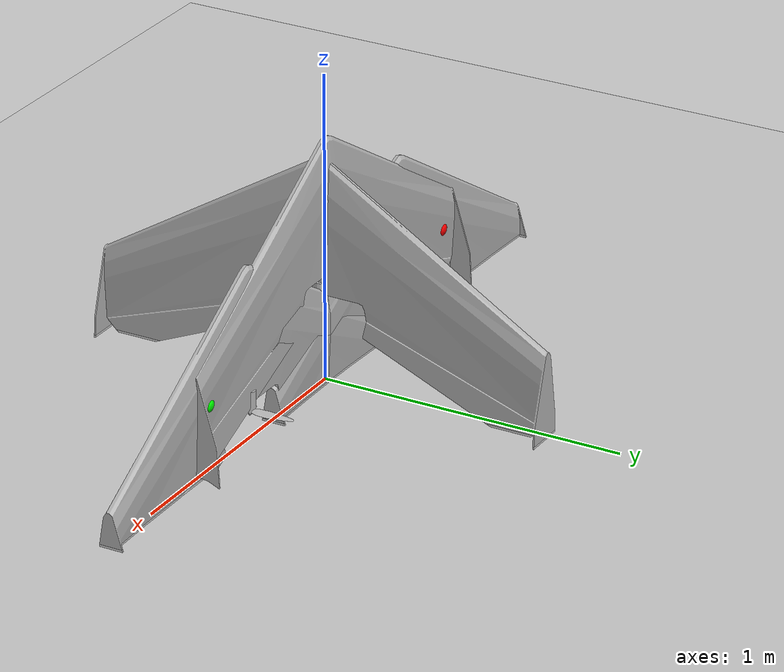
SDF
<?xml version="1.0" ?>
<sdf version="1.9">
  <world name="zephyr_runway">
    <physics name="1ms" type="ignore">
      <max_step_size>0.001</max_step_size>
      <real_time_factor>-1.0</real_time_factor>
    </physics>

    <plugin filename="gz-sim-physics-system"
      name="gz::sim::systems::Physics">
    </plugin>
    <plugin filename="gz-sim-user-commands-system"
      name="gz::sim::systems::UserCommands">
    </plugin>
    <plugin filename="gz-sim-scene-broadcaster-system"
      name="gz::sim::systems::SceneBroadcaster">
    </plugin>
    <plugin filename="gz-sim-imu-system"
      name="gz::sim::systems::Imu">
    </plugin>

    <scene>
      <ambient>1.0 1.0 1.0</ambient>
      <background>0.8 0.8 0.8</background>
      <sky></sky>
    </scene>

    <light type="directional" name="sun">
      <cast_shadows>true</cast_shadows>
      <pose>0 0 10 0 0 0</pose>
      <diffuse>0.8 0.8 0.8 1</diffuse>
      <specular>0.8 0.8 0.8 1</specular>
      <attenuation>
        <range>1000</range>
        <constant>0.9</constant>
        <linear>0.01</linear>
        <quadratic>0.001</quadratic>
      </attenuation>
      <direction>-0.5 0.1 -0.9</direction>
    </light>

    <include>
      <uri>model://runway</uri>
      <pose degrees="true">-29 545 0 0 0 363</pose>
    </include>

    <include>
      <uri>model://zephyr_with_ardupilot</uri>
      <pose degrees="true">0 0 0.422 -90 0 180</pose>
    </include>

  </world>
</sdf>

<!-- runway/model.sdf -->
<sdf version="1.9">
  <model name="runway">
    <static>true</static>
    <link name="link">
      <collision name="collision">
        <geometry>
          <plane>
            <normal>0 0 1</normal>
          </plane>
        </geometry>
      </collision>
      <visual name="runway">
        <pose degrees="true">0 0 0 0 0 90</pose>
        <cast_shadows>false</cast_shadows>
        <geometry>
          <plane>
            <normal>0 0 1</normal>
            <size>1500 100</size>
          </plane>
        </geometry>
        <material>
          <ambient>0.8 0.8 0.8 1</ambient>
          <diffuse>0.8 0.8 0.8 1</diffuse>
          <specular>0.1 0.1 0.1 1</specular>
          <pbr>
            <metal>
              <albedo_map>materials/textures/runway.png</albedo_map>
              <roughness>0.6</roughness>
              <metalness>0</metalness>
            </metal>
          </pbr>
        </material>
      </visual>
      <visual name="airfield">
        <pose>0 0 -0.01 0 0 0</pose>
        <cast_shadows>false</cast_shadows>
        <geometry>
          <mesh>
            <uri>model://runway/meshes/airfield.dae</uri>
          </mesh>
        </geometry>
        <material>
          <ambient>0.8 0.8 0.8 1</ambient>
          <diffuse>0.8 0.8 0.8 1</diffuse>
          <specular>0.1 0.1 0.1 1</specular>
          <pbr>
            <metal>
              <albedo_map>materials/textures/Grass004_2K_Color.jpg</albedo_map>
              <ambient_occlusion_map>materials/textures/Grass004_2K_AmbientOcclusion.jpg</ambient_occlusion_map>
              <normal_map>materials/textures/Grass004_2K_NormalGL.jpg</normal_map>
              <roughness_map>materials/textures/Grass004_2K_Roughness.jpg</roughness_map>
              <roughness>0.6</roughness>
              <metalness>0</metalness>
            </metal>
          </pbr>
        </material>
      </visual>
    </link>
  </model>
</sdf>

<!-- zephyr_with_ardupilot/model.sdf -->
<sdf version="1.9">
  <model name="zephyr_with_ardupilot">
    <include>
      <uri>model://zephyr</uri>
    </include>

    <!-- plugins -->
    <plugin filename="gz-sim-joint-state-publisher-system"
      name="gz::sim::systems::JointStatePublisher">
    </plugin>
    <!-- wing -->
    <plugin filename="gz-sim-lift-drag-system"
        name="gz::sim::systems::LiftDrag">
      <a0>0.13</a0>
      <cla>3.7</cla>
      <cda>0.06417112299</cda>
      <cma>0.0</cma>
      <alpha_stall>0.3391428111</alpha_stall>
      <cla_stall>-3.85</cla_stall>
      <cda_stall>-0.9233984055</cda_stall>
      <cma_stall>0.0</cma_stall>
      <cp>0 -0.1 0</cp>
      <area>0.50</area>
      <air_density>1.2041</air_density>
      <forward>0 -1 0</forward>
      <upward>0 0 1</upward>
      <link_name>zephyr::wing</link_name>
    </plugin>
    <!-- left_wing -->
    <plugin filename="gz-sim-lift-drag-system"
        name="gz::sim::systems::LiftDrag">
      <a0>0.15</a0>
      <cla>6.8</cla>
      <cda>0.06417112299</cda>
      <cma>0.0</cma>
      <alpha_stall>0.6391428111</alpha_stall>
      <cla_stall>-3.85</cla_stall>
      <cda_stall>-0.9233984055</cda_stall>
      <cma_stall>0.0</cma_stall>
      <cp>0.7 0.20 0</cp>
      <area>0.10</area>
      <air_density>1.2041</air_density>
      <forward>0 -1 0</forward>
      <upward>0 0 1</upward>
      <link_name>zephyr::wing</link_name>
      <control_joint_name>zephyr::flap_left_joint</control_joint_name>
      <control_joint_rad_to_cl>-5.0</control_joint_rad_to_cl>
    </plugin>
    <!-- right_wing -->
    <plugin filename="gz-sim-lift-drag-system"
        name="gz::sim::systems::LiftDrag">
      <a0>0.15</a0>
      <cla>6.8</cla>
      <cda>0.06417112299</cda>
      <cma>0.0</cma>
      <alpha_stall>0.6391428111</alpha_stall>
      <cla_stall>-3.85</cla_stall>
      <cda_stall>-0.9233984055</cda_stall>
      <cma_stall>0.0</cma_stall>
      <cp>-0.7 0.20 0</cp>
      <area>0.10</area>
      <air_density>1.2041</air_density>
      <forward>0 -1 0</forward>
      <upward>0 0 1</upward>
      <link_name>zephyr::wing</link_name>
      <control_joint_name>zephyr::flap_right_joint</control_joint_name>
      <control_joint_rad_to_cl>-5.0</control_joint_rad_to_cl>
    </plugin>
    <!-- left_rudder -->
    <plugin filename="gz-sim-lift-drag-system"
        name="gz::sim::systems::LiftDrag">
      <a0>0.0</a0>
      <cla>4.752798721</cla>
      <cda>0.6417112299</cda>
      <cma>0.0</cma>
      <alpha_stall>0.3391428111</alpha_stall>
      <cla_stall>-3.85</cla_stall>
      <cda_stall>-0.9233984055</cda_stall>
      <cma_stall>0.0</cma_stall>
      <cp>-0.76 0.30 0.025</cp>
      <area>0.12</area>
      <air_density>1.2041</air_density>
      <forward>0 -1 0</forward>
      <upward>1 0 0</upward>
      <link_name>zephyr::wing</link_name>
    </plugin>
    <!-- right_rudder -->
    <plugin filename="gz-sim-lift-drag-system"
        name="gz::sim::systems::LiftDrag">
      <a0>0.0</a0>
      <cla>4.752798721</cla>
      <cda>0.6417112299</cda>
      <cma>0.0</cma>
      <alpha_stall>0.3391428111</alpha_stall>
      <cla_stall>-3.85</cla_stall>
      <cda_stall>-0.9233984055</cda_stall>
      <cma_stall>0.0</cma_stall>
      <cp>0.76 0.30 0.025</cp>
      <area>0.12</area>
      <air_density>1.2041</air_density>
      <forward>0 -1 0</forward>
      <upward>1 0 0</upward>
      <link_name>zephyr::wing</link_name>
    </plugin>
    <!-- propeller_blade_1 -->
    <plugin filename="gz-sim-lift-drag-system"
        name="gz::sim::systems::LiftDrag">
      <a0>0.30</a0>
      <alpha_stall>1.4</alpha_stall>
      <cla>4.2500</cla>
      <cda>0.10</cda>
      <cma>0.0</cma>
      <cla_stall>-0.025</cla_stall>
      <cda_stall>0.0</cda_stall>
      <cma_stall>0.0</cma_stall>
      <area>0.02</area>
      <air_density>1.2041</air_density>
      <cp>0 0 0.074205</cp>
      <forward>-1 0 0</forward>
      <upward>0 -1 0</upward>
      <link_name>zephyr::propeller</link_name>
    </plugin>
    <!-- propeller_blade_2 -->
    <plugin filename="gz-sim-lift-drag-system"
        name="gz::sim::systems::LiftDrag">
      <a0>0.30</a0>
      <alpha_stall>1.4</alpha_stall>
      <cla>4.2500</cla>
      <cda>0.10</cda>
      <cma>0.0</cma>
      <cla_stall>-0.025</cla_stall>
      <cda_stall>0.0</cda_stall>
      <cma_stall>0.0</cma_stall>
      <area>0.02</area>
      <air_density>1.2041</air_density>
      <cp>0 0 -0.074205</cp>
      <forward>1 0 0</forward>
      <upward>0 -1 0</upward>
      <link_name>zephyr::propeller</link_name>
    </plugin>

    <plugin filename="gz-sim-apply-joint-force-system"
      name="gz::sim::systems::ApplyJointForce">
      <joint_name>zephyr::propeller_joint</joint_name>
    </plugin>
    <plugin filename="gz-sim-apply-joint-force-system"
      name="gz::sim::systems::ApplyJointForce">
      <joint_name>zephyr::flap_left_joint</joint_name>
    </plugin>
    <plugin filename="gz-sim-apply-joint-force-system"
      name="gz::sim::systems::ApplyJointForce">
      <joint_name>zephyr::flap_right_joint</joint_name>
    </plugin>

    <plugin name="ArduPilotPlugin" filename="ArduPilotPlugin">
      <!-- Port settings -->
      <fdm_addr>127.0.0.1</fdm_addr>
      <fdm_port_in>9002</fdm_port_in>
      <connectionTimeoutMaxCount>5</connectionTimeoutMaxCount>
      <lock_step>1</lock_step>
      <no_time_sync>1</no_time_sync>

      <modelXYZToAirplaneXForwardZDown degrees="true">0 0 0 180 0 -90</modelXYZToAirplaneXForwardZDown>
      <gazeboXYZToNED degrees="true">0 0 0 180 0 90</gazeboXYZToNED>

      <!-- Sensors -->
      <imuName>zephyr::imu_link::imu_sensor</imuName>

      <!--
          incoming control command [0, 1]
          so offset it by 0 to get [0, 1]
          and divide max target by 1.
          offset = 0
          multiplier = 838 max rpm / 1 = 838
        -->

      <!--
          SERVO3_FUNCTION   70 (Throttle)
          SERVO3_MAX        1900
          SERVO3_MIN        1100
          SERVO3_REVERSED   0
          SERVO3_TRIM       1100
       -->
      <control channel="2">
        <jointName>zephyr::propeller_joint</jointName>
        <useForce>1</useForce>
        <multiplier>838</multiplier>
        <offset>0</offset>
        <servo_min>1100</servo_min>
        <servo_max>1900</servo_max>
        <type>VELOCITY</type>
        <p_gain>0.20</p_gain>
        <i_gain>0</i_gain>
        <d_gain>0</d_gain>
        <i_max>0</i_max>
        <i_min>0</i_min>
        <cmd_max>2.5</cmd_max>
        <cmd_min>0.0</cmd_min>
      </control>

      <control channel="0">
        <jointName>zephyr::flap_left_joint</jointName>
        <useForce>1</useForce>
        <multiplier>-1.048</multiplier>
        <offset>-0.5</offset>
        <servo_min>1100</servo_min>
        <servo_max>1900</servo_max>
        <type>POSITION</type>
        <p_gain>10.0</p_gain>
        <i_gain>0</i_gain>
        <d_gain>0</d_gain>
        <i_max>0</i_max>
        <i_min>0</i_min>
        <cmd_max>2.5</cmd_max>
        <cmd_min>-2.5</cmd_min>
      </control>

      <!--
          SERVO2_FUNCTION   78 (Elevon Right)
          SERVO2_MAX        1900
          SERVO2_MIN        1100
          SERVO2_REVERSED   1
          SERVO2_TRIM       1500
       -->
      <control channel="1">
        <jointName>zephyr::flap_right_joint</jointName>
        <useForce>1</useForce>
        <multiplier>-1.048</multiplier>
        <offset>-0.5</offset>
        <servo_min>1100</servo_min>
        <servo_max>1900</servo_max>
        <type>POSITION</type>
        <p_gain>10.0</p_gain>
        <i_gain>0</i_gain>
        <d_gain>0</d_gain>
        <i_max>0</i_max>
        <i_min>0</i_min>
        <cmd_max>2.5</cmd_max>
        <cmd_min>-2.5</cmd_min>
      </control>

    </plugin>

  </model>
</sdf>

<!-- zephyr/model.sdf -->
<sdf version="1.9">
  <model name="zephyr">
    <link name="wing">
      <inertial>
        <pose>0 -0.12 0 0 0 0</pose>
        <mass>1.5</mass>
        <inertia>
          <ixx>0.083137104</ixx>
          <ixy>0</ixy>
          <iyy>0.387382402</iyy>
          <ixz>0</ixz>
          <iyz>0</iyz>
          <izz>0.469845106</izz>
        </inertia>
      </inertial>
      <visual name="visual">
        <geometry>
          <mesh>
            <uri>model://zephyr/meshes/wing.dae</uri>
            <submesh>
              <name>Wing</name>
              <center>true</center>
            </submesh>
          </mesh>
        </geometry>
      </visual>
      <collision name="body_collision">
        <geometry>
          <mesh>
            <uri>model://zephyr/meshes/wing.dae</uri>
            <submesh>
              <name>Wing</name>
              <center>true</center>
            </submesh>
          </mesh>
        </geometry>
      </collision>
      <collision name="right_rudder_collision">
        <pose>-0.76435 0.33918 0.002 -0.03 0 0</pose>
        <geometry>
          <box>
            <size>.005 0.12993 .12688</size>
          </box>
        </geometry>
      </collision>
      <collision name="left_rudder_collision">
        <pose>0.76435 0.33918 0.002 -0.03 0 0</pose>
        <geometry>
          <box>
            <size>.005 0.12993 .12688</size>
          </box>
        </geometry>
      </collision>

      <!-- save center of pressure locations for debugging -->
      <visual name="cp_wing">
        <pose>0 -0.1 0.0 0 0 0</pose>
        <geometry>
          <sphere>
            <radius>0.03</radius>
          </sphere>
        </geometry>
        <material>
          <ambient>0 0 1</ambient>
          <diffuse>0 0 1</diffuse>
          <specular>0.1 0.1 0.1 1</specular>
        </material>
      </visual>
      <visual name="cp_flap_left">
        <pose>0.7 0.20 0 0 0 0</pose>
        <geometry>
          <sphere>
            <radius>0.03</radius>
          </sphere>
        </geometry>
        <material>
          <ambient>1 0 0</ambient>
          <diffuse>1 0 0</diffuse>
          <specular>0.1 0.1 0.1 1</specular>
        </material>
      </visual>
      <visual name="cp_flap_right">
        <pose>-0.7 0.20 0 0 0 0</pose>
        <geometry>
          <sphere>
            <radius>0.03</radius>
          </sphere>
        </geometry>
        <material>
          <ambient>0 1 0</ambient>
          <diffuse>0 1 0</diffuse>
          <specular>0.1 0.1 0.1 1</specular>
        </material>
      </visual>

    </link>
    <link name="propeller">
      <pose degrees="true">0 0.07 0.008 0 90 0</pose>
      <inertial>
        <mass>.05</mass>
        <inertia>
          <ixx>0.000367571</ixx>
          <ixy>0</ixy>
          <iyy>0.00036985</iyy>
          <ixz>0</ixz>
          <iyz>0</iyz>
          <izz>0.000003187</izz>
        </inertia>
      </inertial>
      <visual name="visual">
        <geometry>
          <mesh>
            <uri>model://zephyr/meshes/wing.dae</uri>
            <submesh>
              <name>Propeller</name>
              <center>true</center>
            </submesh>
          </mesh>
        </geometry>
      </visual>
      <collision name="blade1">
        <pose>0 0 0.074205 0 0  0.3</pose>
        <geometry>
          <box>
            <size>0.02561 0.00541 0.14841</size>
          </box>
        </geometry>
      </collision>
      <collision name="blade2">
        <pose>0 0 -0.074205 0 0  -0.3</pose>
        <geometry>
          <box>
            <size>0.02561 0.00541 0.14841</size>
          </box>
        </geometry>
      </collision>
    </link>
    <link name="flap_left">
      <pose>0.4530 .239 0.007 0 0 0</pose>
      <inertial>
        <pose>0 0 0 0 0 0.32445671</pose>
        <mass>.1</mass>
        <inertia>
          <ixx>0.000102319</ixx>
          <ixy>0</ixy>
          <iyy>0.00334417</iyy>
          <ixz>0</ixz>
          <iyz>0</iyz>
          <izz>0.003446072</izz>
        </inertia>
      </inertial>
      <visual name="visual">
        <geometry>
          <mesh>
            <uri>model://zephyr/meshes/wing.dae</uri>
            <submesh>
              <name>Flap_Left</name>
              <center>true</center>
            </submesh>
          </mesh>
        </geometry>
      </visual>
      <collision name="collision">
        <pose>-0.01 0.01 0 0 0 0.32445671</pose>
        <geometry>
          <box>
            <size>0.633463031 0.110694312 0.005</size>
          </box>
        </geometry>
      </collision>
    </link>
    <link name="flap_right">
      <pose>-0.4530 .239 0.007 0 0 0</pose>
      <inertial>
        <pose>0 0 0 0 0 -0.32445671</pose>
        <mass>.1</mass>
        <inertia>
          <ixx>0.000102319</ixx>
          <ixy>0</ixy>
          <iyy>0.00334417</iyy>
          <ixz>0</ixz>
          <iyz>0</iyz>
          <izz>0.003446072</izz>
        </inertia>
      </inertial>
      <visual name="visual">
        <geometry>
          <mesh>
            <uri>model://zephyr/meshes/wing.dae</uri>
            <submesh>
              <name>Flap_Right</name>
              <center>true</center>
            </submesh>
          </mesh>
        </geometry>
      </visual>
      <collision name="collision">
        <pose>0.01 0.01 0 0 0 -0.32445671</pose>
        <geometry>
          <box>
            <size>0.633463031 0.110694312 0.005</size>
          </box>
        </geometry>
      </collision>
    </link>
    <joint name="propeller_joint" type="revolute">
      <parent>wing</parent>
      <child>propeller</child>
      <axis>
        <xyz>0 -1 0</xyz>
        <dynamics>
          <damping>0.002</damping>
        </dynamics>
      </axis>
    </joint>
    <joint name="flap_left_joint" type="revolute">
      <parent>wing</parent>
      <child>flap_left</child>
      <pose>0 -0.04 0 0 0 0</pose>
      <axis>
        <xyz>1 0.330321014 0</xyz>
        <limit>
          <lower>-0.524</lower>
          <upper>0.524</upper>
        </limit>
        <dynamics>
          <damping>0.1</damping>
        </dynamics>
      </axis>
    </joint>
    <joint name="flap_right_joint" type="revolute">
      <parent>wing</parent>
      <child>flap_right</child>
      <pose>0 -0.04 0 0 0 0</pose>
      <axis>
        <xyz>1 -0.330321014 0</xyz>
        <limit>
          <lower>-0.524</lower>
          <upper>0.524</upper>
        </limit>
        <dynamics>
          <damping>0.1</damping>
        </dynamics>
      </axis>
    </joint>

    <!-- sensors -->
    <link name='imu_link'>
      <inertial>
        <pose>0 0 0 0 0 0</pose>
        <mass>0.15</mass>
        <inertia>
          <ixx>0.00002</ixx>
          <ixy>0</ixy>
          <ixz>0</ixz>
          <iyy>0.00002</iyy>
          <iyz>0</iyz>
          <izz>0.00002</izz>
        </inertia>
      </inertial>
      <sensor name="imu_sensor" type="imu">
        <gz_frame_id>imu_link</gz_frame_id>
        <pose degrees="true">0 0 0 180 0 -90</pose>
        <always_on>1</always_on>
        <update_rate>1000.0</update_rate>
      </sensor>
    </link>
    <joint name='imu_joint' type='revolute'>
      <child>imu_link</child>
      <parent>wing</parent>
      <axis>
        <xyz>0 0 1</xyz>
        <limit>
          <lower>0</lower>
          <upper>0</upper>
          <effort>0</effort>
          <velocity>0</velocity>
        </limit>
        <dynamics>
          <damping>1.0</damping>
        </dynamics>
      </axis>
    </joint>
  </model>
</sdf>
